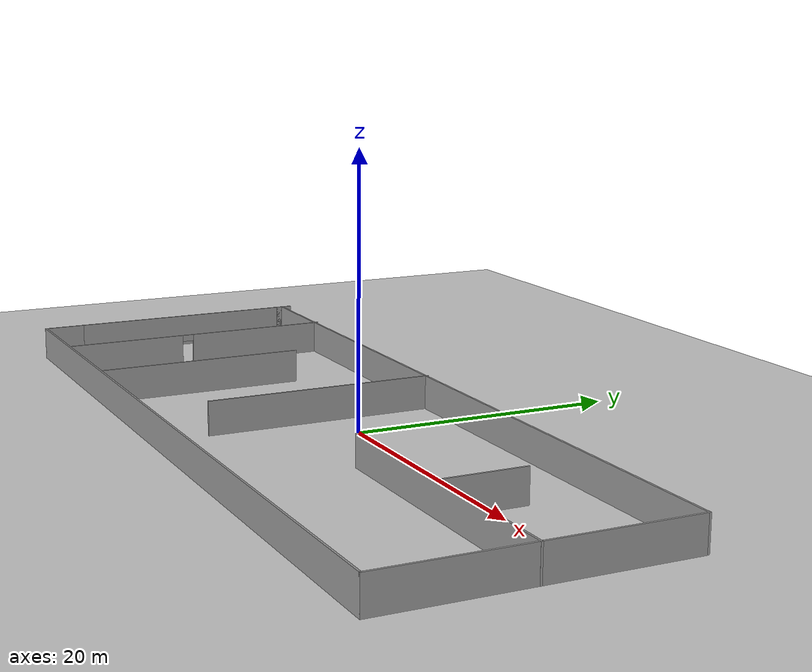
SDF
<sdf version="1.7">
 <world name="default">
  <light name="sun" type="directional">
   <pose>0 0 10 0 -0 0</pose>
   <diffuse>0.8 0.8 0.8 1</diffuse>
   <specular>0.2 0.2 0.2 1</specular>
   <attenuation>
    <range>1000</range>
    <constant>0.9</constant>
    <linear>0.01</linear>
    <quadratic>0.001</quadratic>
   </attenuation>
   <direction>-0.5 0.1 -0.9</direction>
   <spot><inner_angle>0</inner_angle><outer_angle>0</outer_angle><falloff>0</falloff></spot>
  </light>
  <model name="ground_plane">
   <static>1</static>
   <link name="link">
    <collision name="collision">
     <geometry><plane><normal>0 0 1</normal><size>100 100</size></plane></geometry>
     <surface><friction><ode><mu>100</mu><mu2>50</mu2></ode></friction></surface>
    </collision>
    <visual name="visual">
     <cast_shadows>0</cast_shadows>
     <geometry><plane><normal>0 0 1</normal><size>100 100</size></plane></geometry>
     <material>
      <script><uri>file://media/materials/scripts/gazebo.material</uri><name>Gazebo/Grey</name></script>
     </material>
    </visual>
   </link>
  </model>
  <gravity>0 0 -9.8</gravity>
  <magnetic_field>6e-06 2.3e-05 -4.2e-05</magnetic_field>
  <atmosphere type="adiabatic"/>
  <physics type="ode">
   <max_step_size>0.001</max_step_size>
   <real_time_factor>1</real_time_factor>
   <real_time_update_rate>1000</real_time_update_rate>
  </physics>
  <scene><ambient>0.4 0.4 0.4 1</ambient><background>0.7 0.7 0.7 1</background><shadows>1</shadows></scene>
  <audio><device>default</device></audio>
  <spherical_coordinates>
   <surface_model>EARTH_WGS84</surface_model>
   <latitude_deg>0</latitude_deg>
   <longitude_deg>0</longitude_deg>
   <elevation>0</elevation>
   <heading_deg>0</heading_deg>
  </spherical_coordinates>
  <model name="many_walls">
   <pose>-0.691889 -3.04467 0 0 -0 0</pose>
   <link name="Wall_0">
    <collision name="Wall_0_Collision">
     <geometry><box><size>17.75 0.15 2.5</size></box></geometry>
     <pose>0 0 1.25 0 -0 0</pose>
    </collision>
    <visual name="Wall_0_Visual">
     <pose>0 0 1.25 0 -0 0</pose>
     <geometry><box><size>17.75 0.15 2.5</size></box></geometry>
     <material>
      <script><uri>file://media/materials/scripts/gazebo.material</uri><name>Gazebo/Grey</name></script>
      <ambient>1 1 1 1</ambient>
     </material>
     <meta><layer>0</layer></meta>
    </visual>
    <pose>-30.1783 0.875 0 0 -0 -1.5708</pose>
   </link>
   <link name="Wall_1">
    <collision name="Wall_1_Collision">
     <geometry><box><size>3.25 0.15 2.5</size></box></geometry>
     <pose>0 0 1.25 0 -0 0</pose>
    </collision>
    <visual name="Wall_1_Visual">
     <pose>0 0 1.25 0 -0 0</pose>
     <geometry><box><size>3.25 0.15 2.5</size></box></geometry>
     <material>
      <script><uri>file://media/materials/scripts/gazebo.material</uri><name>Gazebo/Grey</name></script>
      <ambient>1 1 1 1</ambient>
     </material>
     <meta><layer>0</layer></meta>
    </visual>
    <pose>-30.1783 -9.475 0 0 -0 -1.5708</pose>
   </link>
   <link name="Wall_10">
    <collision name="Wall_10_Collision">
     <geometry><box><size>15.75 0.15 2.5</size></box></geometry>
     <pose>0 0 1.25 0 -0 0</pose>
    </collision>
    <visual name="Wall_10_Visual">
     <pose>0 0 1.25 0 -0 0</pose>
     <geometry><box><size>15.75 0.15 2.5</size></box></geometry>
     <material>
      <script><uri>file://media/materials/scripts/gazebo.material</uri><name>Gazebo/Grey</name></script>
      <ambient>1 1 1 1</ambient>
     </material>
     <meta><layer>0</layer></meta>
    </visual>
    <pose>-14.4575 -3.01819 0 0 -0 1.5708</pose>
   </link>
   <link name="Wall_12">
    <collision name="Wall_12_Collision">
     <geometry><box><size>17.25 0.15 2.5</size></box></geometry>
     <pose>0 0 1.25 0 -0 0</pose>
    </collision>
    <visual name="Wall_12_Visual">
     <pose>0 0 1.25 0 -0 0</pose>
     <geometry><box><size>17.25 0.15 2.5</size></box></geometry>
     <material>
      <script><uri>file://media/materials/scripts/gazebo.material</uri><name>Gazebo/Grey</name></script>
      <ambient>1 1 1 1</ambient>
     </material>
     <meta><layer>0</layer></meta>
    </visual>
    <pose>-3.04123 1.87361 0 0 -0 -1.5708</pose>
   </link>
   <link name="Wall_14">
    <collision name="Wall_14_Collision">
     <geometry><box><size>22.5 0.15 2.5</size></box></geometry>
     <pose>0 0 1.25 0 -0 0</pose>
    </collision>
    <visual name="Wall_14_Visual">
     <pose>0 0 1.25 0 -0 0</pose>
     <geometry><box><size>22.5 0.15 2.5</size></box></geometry>
     <material>
      <script><uri>file://media/materials/scripts/gazebo.material</uri><name>Gazebo/Grey</name></script>
      <ambient>1 1 1 1</ambient>
     </material>
     <meta><layer>0</layer></meta>
    </visual>
    <pose>19.0033 -0.524806 0 0 -0 3.14159</pose>
   </link>
   <link name="Wall_16">
    <collision name="Wall_16_Collision">
     <geometry><box><size>6.25 0.15 2.5</size></box></geometry>
     <pose>0 0 1.25 0 -0 0</pose>
    </collision>
    <visual name="Wall_16_Visual">
     <pose>0 0 1.25 0 -0 0</pose>
     <geometry><box><size>6.25 0.15 2.5</size></box></geometry>
     <material>
      <script><uri>file://media/materials/scripts/gazebo.material</uri><name>Gazebo/Grey</name></script>
      <ambient>1 1 1 1</ambient>
     </material>
     <meta><layer>0</layer></meta>
    </visual>
    <pose>18.8556 2.61877 0 0 -0 1.5708</pose>
   </link>
   <link name="Wall_2">
    <collision name="Wall_2_Collision">
     <geometry><box><size>60.5 0.15 2.5</size></box></geometry>
     <pose>0 0 1.25 0 -0 0</pose>
    </collision>
    <visual name="Wall_2_Visual">
     <pose>0 0 1.25 0 -0 0</pose>
     <geometry><box><size>60.5 0.15 2.5</size></box></geometry>
     <material>
      <script><uri>file://media/materials/scripts/gazebo.material</uri><name>Gazebo/Grey</name></script>
      <ambient>1 1 1 1</ambient>
     </material>
     <meta><layer>0</layer></meta>
    </visual>
    <pose>-0.003327 -11.025 0 0 -0 0</pose>
   </link>
   <link name="Wall_3">
    <collision name="Wall_3_Collision">
     <geometry><box><size>21.5 0.15 2.5</size></box></geometry>
     <pose>0 0 1.25 0 -0 0</pose>
    </collision>
    <visual name="Wall_3_Visual">
     <pose>0 0 1.25 0 -0 0</pose>
     <geometry><box><size>21.5 0.15 2.5</size></box></geometry>
     <material>
      <script><uri>file://media/materials/scripts/gazebo.material</uri><name>Gazebo/Grey</name></script>
      <ambient>1 1 1 1</ambient>
     </material>
     <meta><layer>0</layer></meta>
    </visual>
    <pose>30.1717 -0.35 0 0 -0 1.5708</pose>
   </link>
   <link name="Wall_4">
    <collision name="Wall_4_Collision">
     <geometry><box><size>60.5 0.15 2.5</size></box></geometry>
     <pose>0 0 1.25 0 -0 0</pose>
    </collision>
    <visual name="Wall_4_Visual">
     <pose>0 0 1.25 0 -0 0</pose>
     <geometry><box><size>60.5 0.15 2.5</size></box></geometry>
     <material>
      <script><uri>file://media/materials/scripts/gazebo.material</uri><name>Gazebo/Grey</name></script>
      <ambient>1 1 1 1</ambient>
     </material>
     <meta><layer>0</layer></meta>
    </visual>
    <pose>-0.003327 10.325 0 0 -0 3.14159</pose>
   </link>
   <link name="Wall_5">
    <collision name="Wall_5_Collision">
     <geometry><box><size>0.8 0.15 2.5</size></box></geometry>
     <pose>0 0 1.25 0 -0 0</pose>
    </collision>
    <visual name="Wall_5_Visual">
     <pose>0 0 1.25 0 -0 0</pose>
     <geometry><box><size>0.8 0.15 2.5</size></box></geometry>
     <material>
      <script><uri>file://media/materials/scripts/gazebo.material</uri><name>Gazebo/Grey</name></script>
      <ambient>1 1 1 1</ambient>
     </material>
     <meta><layer>0</layer></meta>
    </visual>
    <pose>-30.1783 10 0 0 -0 -1.5708</pose>
   </link>
   <link name="Wall_6">
    <collision name="Wall_6_Collision">
     <geometry><box><size>1.5 0.15 2.5</size></box></geometry>
     <pose>0 0 1.25 0 -0 0</pose>
    </collision>
    <visual name="Wall_6_Visual">
     <pose>0 0 1.25 0 -0 0</pose>
     <geometry><box><size>1.5 0.15 2.5</size></box></geometry>
     <material>
      <script><uri>file://media/materials/scripts/gazebo.material</uri><name>Gazebo/Grey</name></script>
      <ambient>1 1 1 1</ambient>
     </material>
     <meta><layer>0</layer></meta>
    </visual>
    <pose>-30.1783 10.35 0 0 -0 1.5708</pose>
   </link>
   <link name="Wall_8">
    <pose>-23.0665 -0.157814 0 0 -0 -1.5708</pose>
    <visual name="Wall_8_Visual_0">
     <pose>-5.13577 0 1.25 0 -0 0</pose>
     <geometry><box><size>11.2285 0.15 2.5</size></box></geometry>
     <material>
      <script><uri>file://media/materials/scripts/gazebo.material</uri><name>Gazebo/Grey</name></script>
      <ambient>1 1 1 1</ambient>
     </material>
     <meta><layer>0</layer></meta>
    </visual>
    <collision name="Wall_8_Collision_0">
     <geometry><box><size>11.2285 0.15 2.5</size></box></geometry>
     <pose>-5.13577 0 1.25 0 -0 0</pose>
    </collision>
    <visual name="Wall_8_Visual_1">
     <pose>6.06423 0 1.25 0 -0 0</pose>
     <geometry><box><size>9.37155 0.15 2.5</size></box></geometry>
     <material>
      <script><uri>file://media/materials/scripts/gazebo.material</uri><name>Gazebo/Grey</name></script>
      <ambient>1 1 1 1</ambient>
     </material>
     <meta><layer>0</layer></meta>
    </visual>
    <collision name="Wall_8_Collision_1">
     <geometry><box><size>9.37155 0.15 2.5</size></box></geometry>
     <pose>6.06423 0 1.25 0 -0 0</pose>
    </collision>
    <visual name="Wall_8_Visual_2">
     <pose>0.92845 0 2.25 0 -0 0</pose>
     <geometry><box><size>0.9 0.15 0.5</size></box></geometry>
     <material>
      <script><uri>file://media/materials/scripts/gazebo.material</uri><name>Gazebo/Grey</name></script>
      <ambient>1 1 1 1</ambient>
     </material>
     <meta><layer>0</layer></meta>
    </visual>
    <collision name="Wall_8_Collision_2">
     <geometry><box><size>0.9 0.15 0.5</size></box></geometry>
     <pose>0.92845 0 2.25 0 -0 0</pose>
    </collision>
   </link>
   <static>1</static>
  </model>
 </world>
</sdf>
